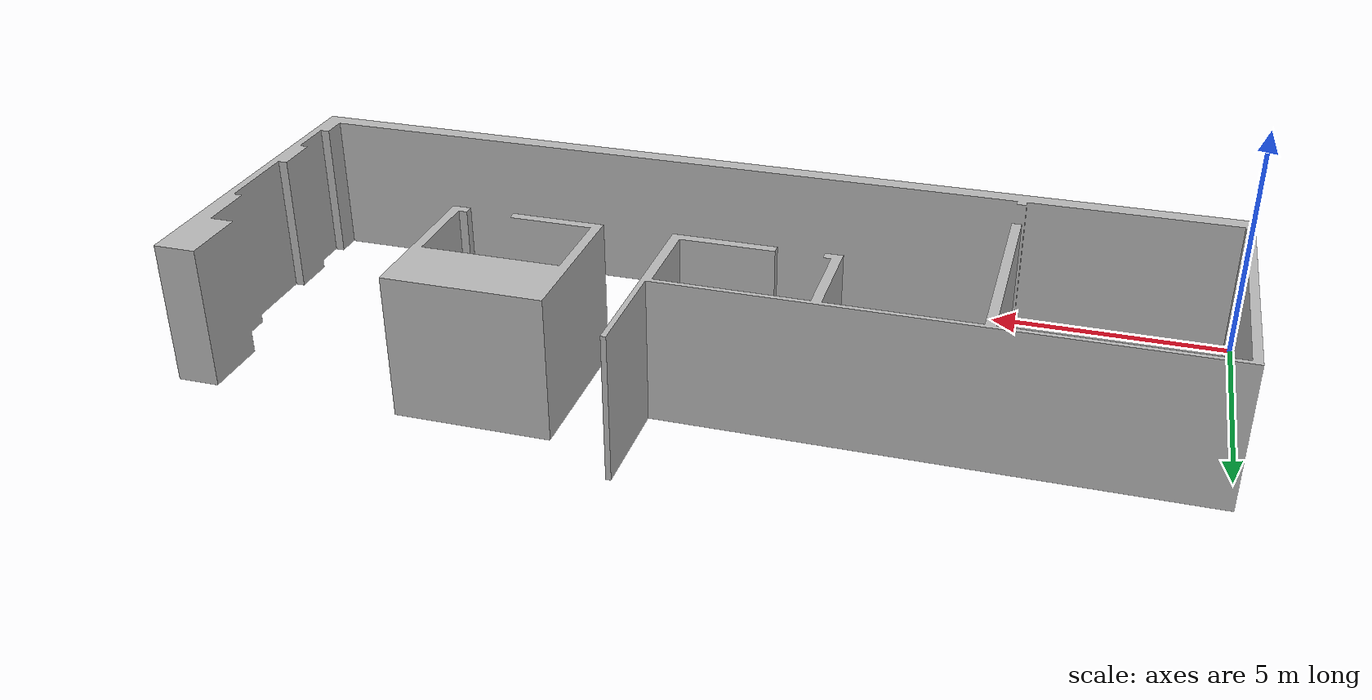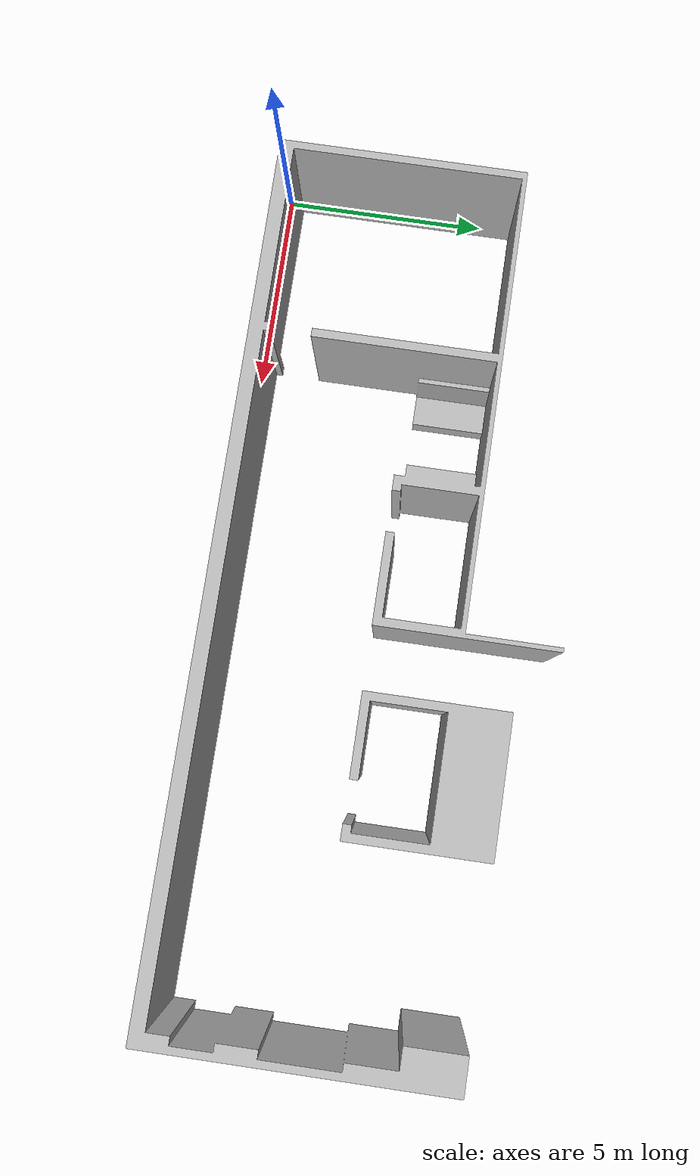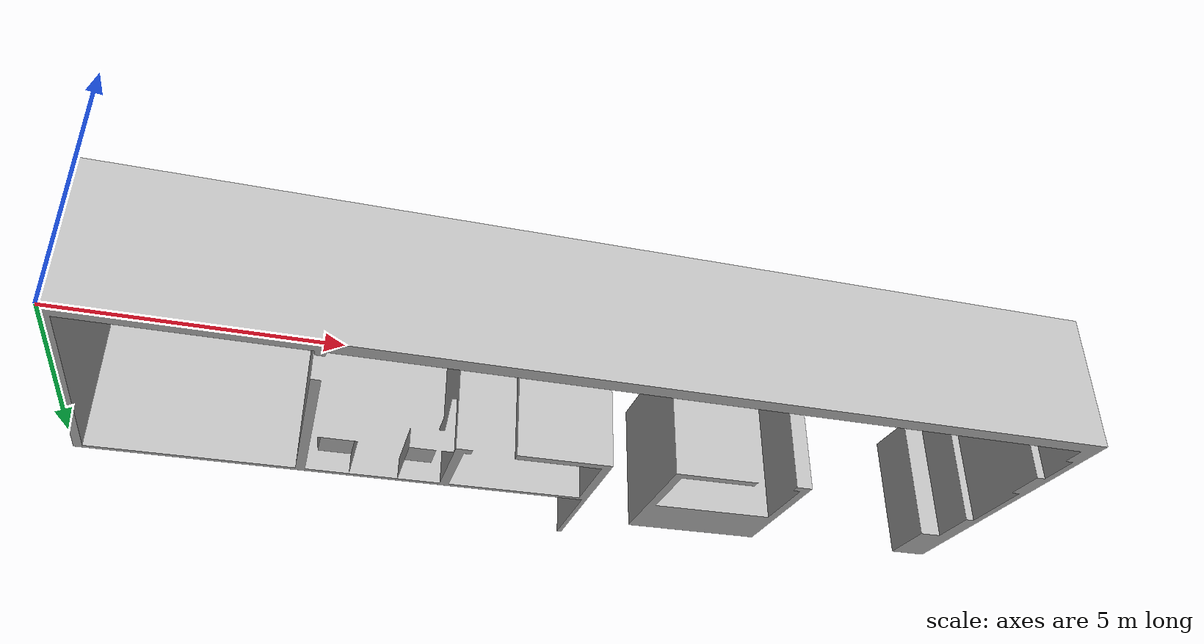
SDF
<?xml version='1.0' ?>
<sdf version='1.6'>
  <model name='TECHIN517_GIX'>
    <static>true</static>
    <link name='link'>
      <inertial>
        <pose>0 0 0 0 0 0</pose>
        <inertia>
          <ixx>1</ixx>
          <ixy>1</ixy>
          <ixz>1</ixz>
          <iyy>1</iyy>
          <iyz>1</iyz>
          <izz>1</izz>
        </inertia>
        <mass>1</mass>
      </inertial>
      <collision name='collision'>
        <geometry>
          <mesh>
            <uri>model://TECHIN517_GIX/meshes/TECHIN517_GIX.stl</uri>
            <scale> 1.0 1.0 1.0 </scale>
          </mesh>
        </geometry>
      </collision>
      <visual name='visual'>
        <geometry>
          <mesh>
            <uri>model://TECHIN517_GIX/meshes/TECHIN517_GIX.stl</uri>
            <scale> 1.0 1.0 1.0 </scale>
          </mesh>
        </geometry>
      </visual>
    </link>
  </model>
</sdf>
